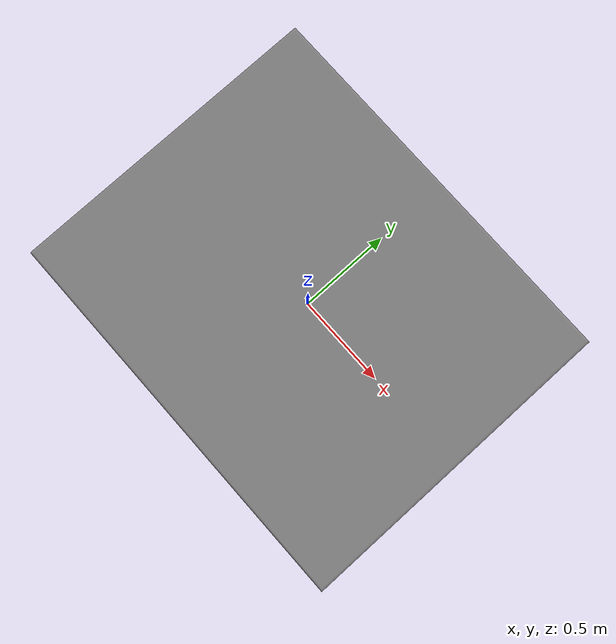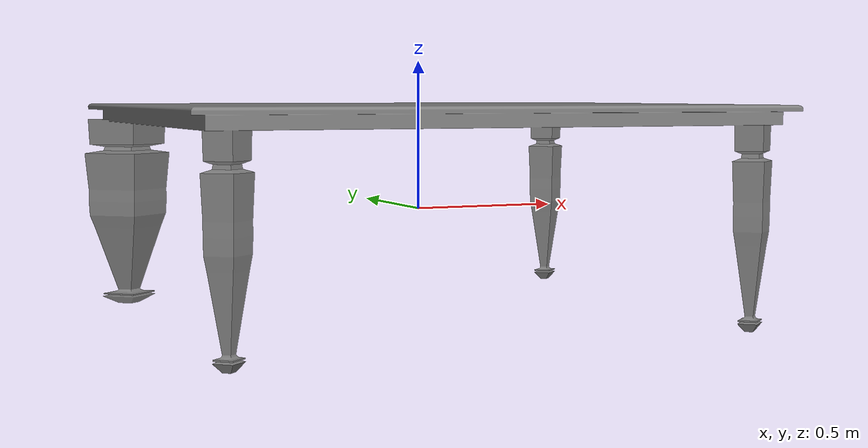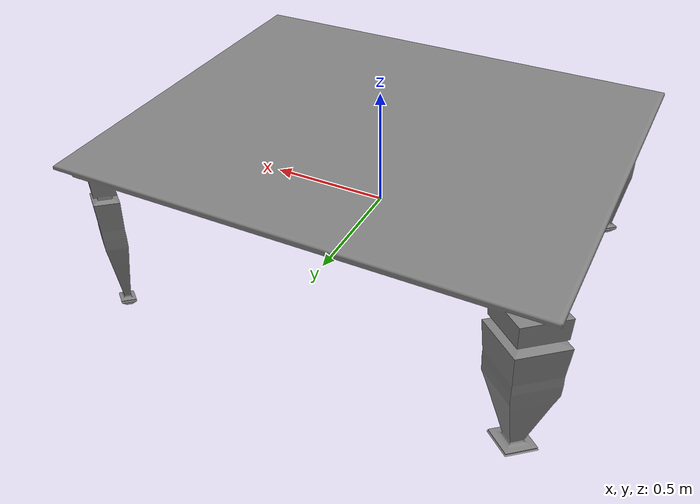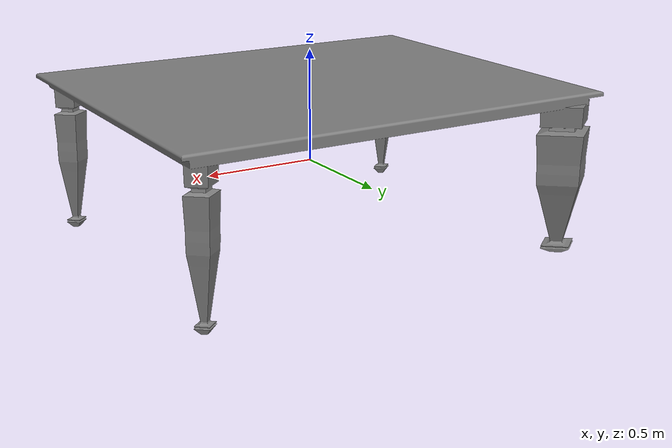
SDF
<?xml version="1.0"?>

<sdf version="1.6">
<model name="ConferenceTable">
  <static>1</static>
    <link name="link">
      <inertial>
        <pose>0.0 0.0 0.0 0.0 0.0 0.0</pose>
        <mass>1</mass>
        <inertia>
          <ixx>0.0</ixx>
          <ixy>0.0</ixy>
          <ixz>0.0</ixz>
          <iyy>0.0</iyy>
          <iyz>0.0</iyz>
          <izz>0.0</izz>
        </inertia>
      </inertial>
      <collision name="collision">
        <pose>0.0 0.0 0.0 0.0 0.0 0.0</pose>
        <geometry>
          <mesh>
				  	<uri>model://ConferenceTable/meshes/conference_table.stl</uri>
				  	<scale>0.016 0.013 0.01</scale>
				  </mesh>
        </geometry>
      </collision>
      <visual name="visual">
        <pose>0.0 0.0 0.0 0.0 0.0 0.0</pose>
        <material>
          <ambient>0.4 0.4 0.4 1</ambient>
          <diffuse>0.5 0.5 0.5 1</diffuse>
          <specular>0 0 0 0</specular>
          <emissive>0 0 0 1</emissive>
        </material>
        <geometry>
          <mesh>
				  	<uri>model://ConferenceTable/meshes/conference_table.stl</uri>
				  	<scale>0.016 0.013 0.01</scale>
				  </mesh>
        </geometry>
      </visual>
    </link>
  </model>
 </sdf>
